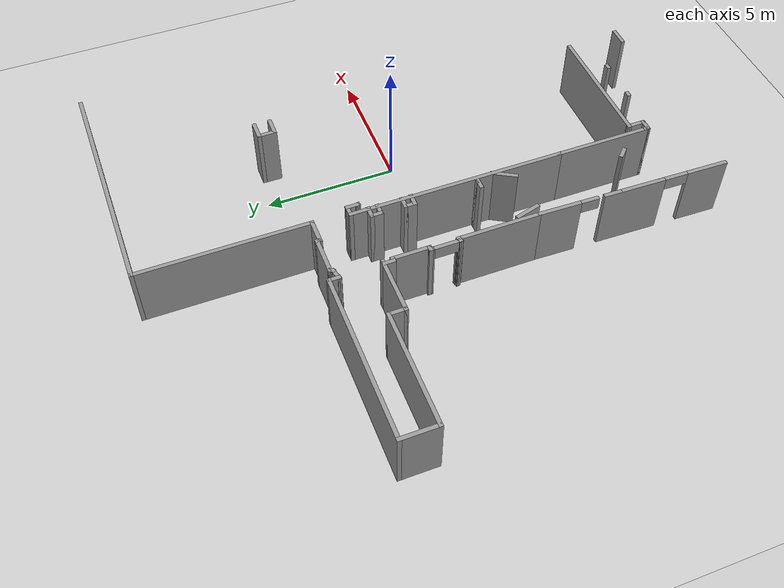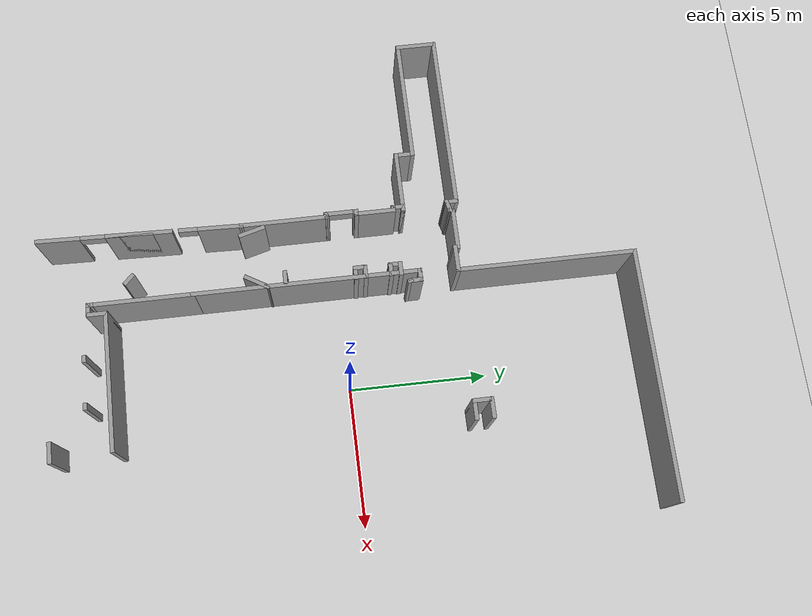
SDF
<sdf version="1.4">
 <world name="default">
  <include><uri>model://ground_plane</uri></include>
  <include><uri>model://sun</uri></include>
  <model name="3rdFloor">
   <static>true</static>
   <link name="Wall_101">
    <collision name="Wall_101_Collision">
     <geometry><box><size>0.25 0.15 2.5</size></box></geometry>
     <pose>0 0 1.25 0 -0 0</pose>
    </collision>
    <visual name="Wall_101_Visual">
     <pose>0 0 1.25 0 -0 0</pose>
     <geometry><box><size>0.25 0.15 2.5</size></box></geometry>
     <material>
      <script><uri>file://media/materials/scripts/gazebo.material</uri><name>Gazebo/Grey</name></script>
      <ambient>1 1 1 1</ambient>
     </material>
    </visual>
    <pose>-3.72513 -1.89943 0 0 -0 0</pose>
   </link>
   <link name="Wall_102">
    <collision name="Wall_102_Collision">
     <geometry><box><size>0.25 0.15 2.5</size></box></geometry>
     <pose>0 0 1.25 0 -0 0</pose>
    </collision>
    <visual name="Wall_102_Visual">
     <pose>0 0 1.25 0 -0 0</pose>
     <geometry><box><size>0.25 0.15 2.5</size></box></geometry>
     <material>
      <script><uri>file://media/materials/scripts/gazebo.material</uri><name>Gazebo/Grey</name></script>
      <ambient>1 1 1 1</ambient>
     </material>
    </visual>
    <pose>-3.72513 -1.89943 0 0 -0 3.14159</pose>
   </link>
   <link name="Wall_104">
    <collision name="Wall_104_Collision">
     <geometry><box><size>0.5 0.15 2.5</size></box></geometry>
     <pose>0 0 1.25 0 -0 0</pose>
    </collision>
    <visual name="Wall_104_Visual">
     <pose>0 0 1.25 0 -0 0</pose>
     <geometry><box><size>0.5 0.15 2.5</size></box></geometry>
     <material>
      <script><uri>file://media/materials/scripts/gazebo.material</uri><name>Gazebo/Grey</name></script>
      <ambient>1 1 1 1</ambient>
     </material>
    </visual>
    <pose>-3.85013 -1.89943 0 0 -0 3.14159</pose>
   </link>
   <link name="Wall_106">
    <collision name="Wall_106_Collision">
     <geometry><box><size>0.5 0.15 2.5</size></box></geometry>
     <pose>0 0 1.25 0 -0 0</pose>
    </collision>
    <visual name="Wall_106_Visual">
     <pose>0 0 1.25 0 -0 0</pose>
     <geometry><box><size>0.5 0.15 2.5</size></box></geometry>
     <material>
      <script><uri>file://media/materials/scripts/gazebo.material</uri><name>Gazebo/Grey</name></script>
      <ambient>1 1 1 1</ambient>
     </material>
    </visual>
    <pose>-3.73223 2.2205 0 0 -0 3.14159</pose>
   </link>
   <link name="Wall_107">
    <collision name="Wall_107_Collision">
     <geometry><box><size>0.5 0.15 2.5</size></box></geometry>
     <pose>0 0 1.25 0 -0 0</pose>
    </collision>
    <visual name="Wall_107_Visual">
     <pose>0 0 1.25 0 -0 0</pose>
     <geometry><box><size>0.5 0.15 2.5</size></box></geometry>
     <material>
      <script><uri>file://media/materials/scripts/gazebo.material</uri><name>Gazebo/Grey</name></script>
      <ambient>1 1 1 1</ambient>
     </material>
    </visual>
    <pose>-3.90723 2.0455 0 0 0 -1.5708</pose>
   </link>
   <link name="Wall_108">
    <collision name="Wall_108_Collision">
     <geometry><box><size>0.5 0.15 2.5</size></box></geometry>
     <pose>0 0 1.25 0 -0 0</pose>
    </collision>
    <visual name="Wall_108_Visual">
     <pose>0 0 1.25 0 -0 0</pose>
     <geometry><box><size>0.5 0.15 2.5</size></box></geometry>
     <material>
      <script><uri>file://media/materials/scripts/gazebo.material</uri><name>Gazebo/Grey</name></script>
      <ambient>1 1 1 1</ambient>
     </material>
    </visual>
    <pose>-3.73223 1.8705 0 0 -0 0</pose>
   </link>
   <link name="Wall_110">
    <collision name="Wall_110_Collision">
     <geometry><box><size>0.5 0.15 2.5</size></box></geometry>
     <pose>0 0 1.25 0 -0 0</pose>
    </collision>
    <visual name="Wall_110_Visual">
     <pose>0 0 1.25 0 -0 0</pose>
     <geometry><box><size>0.5 0.15 2.5</size></box></geometry>
     <material>
      <script><uri>file://media/materials/scripts/gazebo.material</uri><name>Gazebo/Grey</name></script>
      <ambient>1 1 1 1</ambient>
     </material>
    </visual>
    <pose>-3.74744 0.958175 0 0 -0 3.14159</pose>
   </link>
   <link name="Wall_111">
    <collision name="Wall_111_Collision">
     <geometry><box><size>0.5 0.15 2.5</size></box></geometry>
     <pose>0 0 1.25 0 -0 0</pose>
    </collision>
    <visual name="Wall_111_Visual">
     <pose>0 0 1.25 0 -0 0</pose>
     <geometry><box><size>0.5 0.15 2.5</size></box></geometry>
     <material>
      <script><uri>file://media/materials/scripts/gazebo.material</uri><name>Gazebo/Grey</name></script>
      <ambient>1 1 1 1</ambient>
     </material>
    </visual>
    <pose>-3.92244 0.783175 0 0 0 -1.5708</pose>
   </link>
   <link name="Wall_112">
    <collision name="Wall_112_Collision">
     <geometry><box><size>0.515209 0.15 2.5</size></box></geometry>
     <pose>0 0 1.25 0 -0 0</pose>
    </collision>
    <visual name="Wall_112_Visual">
     <pose>0 0 1.25 0 -0 0</pose>
     <geometry><box><size>0.515209 0.15 2.5</size></box></geometry>
     <material>
      <script><uri>file://media/materials/scripts/gazebo.material</uri><name>Gazebo/Grey</name></script>
      <ambient>1 1 1 1</ambient>
     </material>
    </visual>
    <pose>-3.73983 0.608175 0 0 -0 0</pose>
   </link>
   <link name="Wall_114">
    <collision name="Wall_114_Collision">
     <geometry><box><size>0.25 0.15 2.5</size></box></geometry>
     <pose>0 0 1.25 0 -0 0</pose>
    </collision>
    <visual name="Wall_114_Visual">
     <pose>0 0 1.25 0 -0 0</pose>
     <geometry><box><size>0.25 0.15 2.5</size></box></geometry>
     <material>
      <script><uri>file://media/materials/scripts/gazebo.material</uri><name>Gazebo/Grey</name></script>
      <ambient>1 1 1 1</ambient>
     </material>
    </visual>
    <pose>-1.66801 -9.13362 0 0 -0 0</pose>
   </link>
   <link name="Wall_116">
    <collision name="Wall_116_Collision">
     <geometry><box><size>0.25 0.15 2.5</size></box></geometry>
     <pose>0 0 1.25 0 -0 0</pose>
    </collision>
    <visual name="Wall_116_Visual">
     <pose>0 0 1.25 0 -0 0</pose>
     <geometry><box><size>0.25 0.15 2.5</size></box></geometry>
     <material>
      <script><uri>file://media/materials/scripts/gazebo.material</uri><name>Gazebo/Grey</name></script>
      <ambient>1 1 1 1</ambient>
     </material>
    </visual>
    <pose>0.011032 -9.1686 0 0 -0 0</pose>
   </link>
   <link name="Wall_120">
    <collision name="Wall_120_Collision">
     <geometry><box><size>0.5 0.15 2.5</size></box></geometry>
     <pose>0 0 1.25 0 -0 0</pose>
    </collision>
    <visual name="Wall_120_Visual">
     <pose>0 0 1.25 0 -0 0</pose>
     <geometry><box><size>0.5 0.15 2.5</size></box></geometry>
     <material>
      <script><uri>file://media/materials/scripts/gazebo.material</uri><name>Gazebo/Grey</name></script>
      <ambient>1 1 1 1</ambient>
     </material>
    </visual>
    <pose>-4.37519 -7.42091 0 0 0 -0.785398</pose>
   </link>
   <link name="Wall_122">
    <collision name="Wall_122_Collision">
     <geometry><box><size>1 0.15 2.5</size></box></geometry>
     <pose>0 0 1.25 0 -0 0</pose>
    </collision>
    <visual name="Wall_122_Visual">
     <pose>0 0 1.25 0 -0 0</pose>
     <geometry><box><size>1 0.15 2.5</size></box></geometry>
     <material>
      <script><uri>file://media/materials/scripts/gazebo.material</uri><name>Gazebo/Grey</name></script>
      <ambient>1 1 1 1</ambient>
     </material>
    </visual>
    <pose>-5.6895 -2.93592 0 0 0 -1.309</pose>
   </link>
   <link name="Wall_124">
    <collision name="Wall_124_Collision">
     <geometry><box><size>1 0.15 2.5</size></box></geometry>
     <pose>0 0 1.25 0 -0 0</pose>
    </collision>
    <visual name="Wall_124_Visual">
     <pose>0 0 1.25 0 -0 0</pose>
     <geometry><box><size>1 0.15 2.5</size></box></geometry>
     <material>
      <script><uri>file://media/materials/scripts/gazebo.material</uri><name>Gazebo/Grey</name></script>
      <ambient>1 1 1 1</ambient>
     </material>
    </visual>
    <pose>-3.79076 -2.91095 0 0 0 -2.0944</pose>
   </link>
   <link name="Wall_126">
    <collision name="Wall_126_Collision">
     <geometry><box><size>0.75 0.15 2.5</size></box></geometry>
     <pose>0 0 1.25 0 -0 0</pose>
    </collision>
    <visual name="Wall_126_Visual">
     <pose>0 0 1.25 0 -0 0</pose>
     <geometry><box><size>0.75 0.15 2.5</size></box></geometry>
     <material>
      <script><uri>file://media/materials/scripts/gazebo.material</uri><name>Gazebo/Grey</name></script>
      <ambient>1 1 1 1</ambient>
     </material>
    </visual>
    <pose>1.46976 -10.4503 0 0 -0 0</pose>
   </link>
   <link name="Wall_44">
    <collision name="Wall_44_Collision">
     <geometry><box><size>9 0.15 2.5</size></box></geometry>
     <pose>0 0 1.25 0 -0 0</pose>
    </collision>
    <visual name="Wall_44_Visual">
     <pose>0 0 1.25 0 -0 0</pose>
     <geometry><box><size>9 0.15 2.5</size></box></geometry>
     <material>
      <script><uri>file://media/materials/scripts/gazebo.material</uri><name>Gazebo/Grey</name></script>
      <ambient>1 1 1 1</ambient>
     </material>
    </visual>
    <pose>0.964744 10.6072 0 0 -0 3.14159</pose>
   </link>
   <link name="Wall_45">
    <collision name="Wall_45_Collision">
     <geometry><box><size>6.5 0.15 2.5</size></box></geometry>
     <pose>0 0 1.25 0 -0 0</pose>
    </collision>
    <visual name="Wall_45_Visual">
     <pose>0 0 1.25 0 -0 0</pose>
     <geometry><box><size>6.5 0.15 2.5</size></box></geometry>
     <material>
      <script><uri>file://media/materials/scripts/gazebo.material</uri><name>Gazebo/Grey</name></script>
      <ambient>1 1 1 1</ambient>
     </material>
    </visual>
    <pose>-3.46026 7.43223 0 0 0 -1.5708</pose>
   </link>
   <link name="Wall_46">
    <collision name="Wall_46_Collision">
     <geometry><box><size>1 0.15 2.5</size></box></geometry>
     <pose>0 0 1.25 0 -0 0</pose>
    </collision>
    <visual name="Wall_46_Visual">
     <pose>0 0 1.25 0 -0 0</pose>
     <geometry><box><size>1 0.15 2.5</size></box></geometry>
     <material>
      <script><uri>file://media/materials/scripts/gazebo.material</uri><name>Gazebo/Grey</name></script>
      <ambient>1 1 1 1</ambient>
     </material>
    </visual>
    <pose>-3.88525 4.25723 0 0 -0 3.14159</pose>
   </link>
   <link name="Wall_47">
    <collision name="Wall_47_Collision">
     <geometry><box><size>0.25 0.15 2.5</size></box></geometry>
     <pose>0 0 1.25 0 -0 0</pose>
    </collision>
    <visual name="Wall_47_Visual">
     <pose>0 0 1.25 0 -0 0</pose>
     <geometry><box><size>0.25 0.15 2.5</size></box></geometry>
     <material>
      <script><uri>file://media/materials/scripts/gazebo.material</uri><name>Gazebo/Grey</name></script>
      <ambient>1 1 1 1</ambient>
     </material>
    </visual>
    <pose>-4.31026 4.30723 0 0 -0 1.5708</pose>
   </link>
   <link name="Wall_48">
    <collision name="Wall_48_Collision">
     <geometry><box><size>1.5 0.15 2.5</size></box></geometry>
     <pose>0 0 1.25 0 -0 0</pose>
    </collision>
    <visual name="Wall_48_Visual">
     <pose>0 0 1.25 0 -0 0</pose>
     <geometry><box><size>1.5 0.15 2.5</size></box></geometry>
     <material>
      <script><uri>file://media/materials/scripts/gazebo.material</uri><name>Gazebo/Grey</name></script>
      <ambient>1 1 1 1</ambient>
     </material>
    </visual>
    <pose>-4.98526 4.35723 0 0 -0 3.14159</pose>
   </link>
   <link name="Wall_49">
    <collision name="Wall_49_Collision">
     <geometry><box><size>0.25 0.15 2.5</size></box></geometry>
     <pose>0 0 1.25 0 -0 0</pose>
    </collision>
    <visual name="Wall_49_Visual">
     <pose>0 0 1.25 0 -0 0</pose>
     <geometry><box><size>0.25 0.15 2.5</size></box></geometry>
     <material>
      <script><uri>file://media/materials/scripts/gazebo.material</uri><name>Gazebo/Grey</name></script>
      <ambient>1 1 1 1</ambient>
     </material>
    </visual>
    <pose>-5.68526 4.31393 0 0 0 -2.0944</pose>
   </link>
   <link name="Wall_50">
    <collision name="Wall_50_Collision">
     <geometry><box><size>0.5 0.15 2.5</size></box></geometry>
     <pose>0 0 1.25 0 -0 0</pose>
    </collision>
    <visual name="Wall_50_Visual">
     <pose>0 0 1.25 0 -0 0</pose>
     <geometry><box><size>0.5 0.15 2.5</size></box></geometry>
     <material>
      <script><uri>file://media/materials/scripts/gazebo.material</uri><name>Gazebo/Grey</name></script>
      <ambient>1 1 1 1</ambient>
     </material>
    </visual>
    <pose>-5.87929 4.22533 0 0 0 -2.87979</pose>
   </link>
   <link name="Wall_51">
    <collision name="Wall_51_Collision">
     <geometry><box><size>0.5 0.15 2.5</size></box></geometry>
     <pose>0 0 1.25 0 -0 0</pose>
    </collision>
    <visual name="Wall_51_Visual">
     <pose>0 0 1.25 0 -0 0</pose>
     <geometry><box><size>0.5 0.15 2.5</size></box></geometry>
     <material>
      <script><uri>file://media/materials/scripts/gazebo.material</uri><name>Gazebo/Grey</name></script>
      <ambient>1 1 1 1</ambient>
     </material>
    </visual>
    <pose>-6.04833 4.35504 0 0 -0 1.5708</pose>
   </link>
   <link name="Wall_53">
    <collision name="Wall_53_Collision">
     <geometry><box><size>6.5 0.15 2.5</size></box></geometry>
     <pose>0 0 1.25 0 -0 0</pose>
    </collision>
    <visual name="Wall_53_Visual">
     <pose>0 0 1.25 0 -0 0</pose>
     <geometry><box><size>6.5 0.15 2.5</size></box></geometry>
     <material>
      <script><uri>file://media/materials/scripts/gazebo.material</uri><name>Gazebo/Grey</name></script>
      <ambient>1 1 1 1</ambient>
     </material>
    </visual>
    <pose>-9.22333 4.53004 0 0 -0 3.14159</pose>
   </link>
   <link name="Wall_54">
    <collision name="Wall_54_Collision">
     <geometry><box><size>1.5 0.15 2.5</size></box></geometry>
     <pose>0 0 1.25 0 -0 0</pose>
    </collision>
    <visual name="Wall_54_Visual">
     <pose>0 0 1.25 0 -0 0</pose>
     <geometry><box><size>1.5 0.15 2.5</size></box></geometry>
     <material>
      <script><uri>file://media/materials/scripts/gazebo.material</uri><name>Gazebo/Grey</name></script>
      <ambient>1 1 1 1</ambient>
     </material>
    </visual>
    <pose>-12.3983 3.85504 0 0 0 -1.5708</pose>
   </link>
   <link name="Wall_55">
    <collision name="Wall_55_Collision">
     <geometry><box><size>4.5 0.15 2.5</size></box></geometry>
     <pose>0 0 1.25 0 -0 0</pose>
    </collision>
    <visual name="Wall_55_Visual">
     <pose>0 0 1.25 0 -0 0</pose>
     <geometry><box><size>4.5 0.15 2.5</size></box></geometry>
     <material>
      <script><uri>file://media/materials/scripts/gazebo.material</uri><name>Gazebo/Grey</name></script>
      <ambient>1 1 1 1</ambient>
     </material>
    </visual>
    <pose>-10.2233 3.18004 0 0 -0 0</pose>
   </link>
   <link name="Wall_56">
    <collision name="Wall_56_Collision">
     <geometry><box><size>0.75 0.15 2.5</size></box></geometry>
     <pose>0 0 1.25 0 -0 0</pose>
    </collision>
    <visual name="Wall_56_Visual">
     <pose>0 0 1.25 0 -0 0</pose>
     <geometry><box><size>0.75 0.15 2.5</size></box></geometry>
     <material>
      <script><uri>file://media/materials/scripts/gazebo.material</uri><name>Gazebo/Grey</name></script>
      <ambient>1 1 1 1</ambient>
     </material>
    </visual>
    <pose>-8.04833 2.88004 0 0 0 -1.5708</pose>
   </link>
   <link name="Wall_57">
    <collision name="Wall_57_Collision">
     <geometry><box><size>2.25 0.15 2.5</size></box></geometry>
     <pose>0 0 1.25 0 -0 0</pose>
    </collision>
    <visual name="Wall_57_Visual">
     <pose>0 0 1.25 0 -0 0</pose>
     <geometry><box><size>2.25 0.15 2.5</size></box></geometry>
     <material>
      <script><uri>file://media/materials/scripts/gazebo.material</uri><name>Gazebo/Grey</name></script>
      <ambient>1 1 1 1</ambient>
     </material>
    </visual>
    <pose>-6.99833 2.58004 0 0 -0 0</pose>
   </link>
   <link name="Wall_58">
    <collision name="Wall_58_Collision">
     <geometry><box><size>0.25 0.15 2.5</size></box></geometry>
     <pose>0 0 1.25 0 -0 0</pose>
    </collision>
    <visual name="Wall_58_Visual">
     <pose>0 0 1.25 0 -0 0</pose>
     <geometry><box><size>0.25 0.15 2.5</size></box></geometry>
     <material>
      <script><uri>file://media/materials/scripts/gazebo.material</uri><name>Gazebo/Grey</name></script>
      <ambient>1 1 1 1</ambient>
     </material>
    </visual>
    <pose>-5.99833 2.58004 0 0 -0 3.14159</pose>
   </link>
   <link name="Wall_59">
    <collision name="Wall_59_Collision">
     <geometry><box><size>0.5 0.15 2.5</size></box></geometry>
     <pose>0 0 1.25 0 -0 0</pose>
    </collision>
    <visual name="Wall_59_Visual">
     <pose>0 0 1.25 0 -0 0</pose>
     <geometry><box><size>0.5 0.15 2.5</size></box></geometry>
     <material>
      <script><uri>file://media/materials/scripts/gazebo.material</uri><name>Gazebo/Grey</name></script>
      <ambient>1 1 1 1</ambient>
     </material>
    </visual>
    <pose>-6.04833 2.40504 0 0 0 -1.5708</pose>
   </link>
   <link name="Wall_60">
    <collision name="Wall_60_Collision">
     <geometry><box><size>0.25 0.15 2.5</size></box></geometry>
     <pose>0 0 1.25 0 -0 0</pose>
    </collision>
    <visual name="Wall_60_Visual">
     <pose>0 0 1.25 0 -0 0</pose>
     <geometry><box><size>0.25 0.15 2.5</size></box></geometry>
     <material>
      <script><uri>file://media/materials/scripts/gazebo.material</uri><name>Gazebo/Grey</name></script>
      <ambient>1 1 1 1</ambient>
     </material>
    </visual>
    <pose>-5.99833 2.23004 0 0 -0 0</pose>
   </link>
   <link name="Wall_61">
    <collision name="Wall_61_Collision">
     <geometry><box><size>1.5 0.15 2.5</size></box></geometry>
     <pose>0 0 1.25 0 -0 0</pose>
    </collision>
    <visual name="Wall_61_Visual">
     <pose>0 0 1.25 0 -0 0</pose>
     <geometry><box><size>1.5 0.15 2.5</size></box></geometry>
     <material>
      <script><uri>file://media/materials/scripts/gazebo.material</uri><name>Gazebo/Grey</name></script>
      <ambient>1 1 1 1</ambient>
     </material>
    </visual>
    <pose>-5.94833 1.55504 0 0 0 -1.5708</pose>
   </link>
   <link name="Wall_62">
    <collision name="Wall_62_Collision">
     <geometry><box><size>0.25 0.15 2.5</size></box></geometry>
     <pose>0 0 1.25 0 -0 0</pose>
    </collision>
    <visual name="Wall_62_Visual">
     <pose>0 0 1.25 0 -0 0</pose>
     <geometry><box><size>0.25 0.15 2.5</size></box></geometry>
     <material>
      <script><uri>file://media/materials/scripts/gazebo.material</uri><name>Gazebo/Grey</name></script>
      <ambient>1 1 1 1</ambient>
     </material>
    </visual>
    <pose>-5.99833 0.880041 0 0 -0 3.14159</pose>
   </link>
   <link name="Wall_63">
    <pose>-6.04833 0.330041 0 0 0 -1.5708</pose>
    <visual name="Wall_63_Visual_0">
     <pose>-0.525534 0 1.25 0 -0 0</pose>
     <geometry><box><size>0.198932 0.15 2.5</size></box></geometry>
     <material>
      <script><uri>file://media/materials/scripts/gazebo.material</uri><name>Gazebo/Grey</name></script>
      <ambient>1 1 1 1</ambient>
     </material>
    </visual>
    <collision name="Wall_63_Collision_0">
     <geometry><box><size>0.198932 0.15 2.5</size></box></geometry>
     <pose>-0.525534 0 1.25 0 -0 0</pose>
    </collision>
    <visual name="Wall_63_Visual_1">
     <pose>0.549466 0 1.25 0 -0 0</pose>
     <geometry><box><size>0.151068 0.15 2.5</size></box></geometry>
     <material>
      <script><uri>file://media/materials/scripts/gazebo.material</uri><name>Gazebo/Grey</name></script>
      <ambient>1 1 1 1</ambient>
     </material>
    </visual>
    <collision name="Wall_63_Collision_1">
     <geometry><box><size>0.151068 0.15 2.5</size></box></geometry>
     <pose>0.549466 0 1.25 0 -0 0</pose>
    </collision>
    <visual name="Wall_63_Visual_2">
     <pose>0.023932 0 2.25 0 -0 0</pose>
     <geometry><box><size>0.9 0.15 0.5</size></box></geometry>
     <material>
      <script><uri>file://media/materials/scripts/gazebo.material</uri><name>Gazebo/Grey</name></script>
      <ambient>1 1 1 1</ambient>
     </material>
    </visual>
    <collision name="Wall_63_Collision_2">
     <geometry><box><size>0.9 0.15 0.5</size></box></geometry>
     <pose>0.023932 0 2.25 0 -0 0</pose>
    </collision>
   </link>
   <link name="Wall_64">
    <collision name="Wall_64_Collision">
     <geometry><box><size>0.15 0.15 2.5</size></box></geometry>
     <pose>0 0 1.25 0 -0 0</pose>
    </collision>
    <visual name="Wall_64_Visual">
     <pose>0 0 1.25 0 -0 0</pose>
     <geometry><box><size>0.15 0.15 2.5</size></box></geometry>
     <material>
      <script><uri>file://media/materials/scripts/gazebo.material</uri><name>Gazebo/Grey</name></script>
      <ambient>1 1 1 1</ambient>
     </material>
    </visual>
    <pose>-6.04833 -0.219959 0 0 -0 0</pose>
   </link>
   <link name="Wall_65">
    <collision name="Wall_65_Collision">
     <geometry><box><size>0.25 0.15 2.5</size></box></geometry>
     <pose>0 0 1.25 0 -0 0</pose>
    </collision>
    <visual name="Wall_65_Visual">
     <pose>0 0 1.25 0 -0 0</pose>
     <geometry><box><size>0.25 0.15 2.5</size></box></geometry>
     <material>
      <script><uri>file://media/materials/scripts/gazebo.material</uri><name>Gazebo/Grey</name></script>
      <ambient>1 1 1 1</ambient>
     </material>
    </visual>
    <pose>-6.00003 -0.207018 0 0 -0 0.261799</pose>
   </link>
   <link name="Wall_66">
    <collision name="Wall_66_Collision">
     <geometry><box><size>3.25 0.15 2.5</size></box></geometry>
     <pose>0 0 1.25 0 -0 0</pose>
    </collision>
    <visual name="Wall_66_Visual">
     <pose>0 0 1.25 0 -0 0</pose>
     <geometry><box><size>3.25 0.15 2.5</size></box></geometry>
     <material>
      <script><uri>file://media/materials/scripts/gazebo.material</uri><name>Gazebo/Grey</name></script>
      <ambient>1 1 1 1</ambient>
     </material>
    </visual>
    <pose>-5.95174 -1.74408 0 0 0 -1.5708</pose>
   </link>
   <link name="Wall_67">
    <pose>-6.04728 -6.96303 0 0 0 -1.59683</pose>
    <visual name="Wall_67_Visual_0">
     <pose>-2.92106 0 1.25 0 -0 0</pose>
     <geometry><box><size>1.64829 0.15 2.5</size></box></geometry>
     <material>
      <script><uri>file://media/materials/scripts/gazebo.material</uri><name>Gazebo/Grey</name></script>
      <ambient>1 1 1 1</ambient>
     </material>
    </visual>
    <collision name="Wall_67_Collision_0">
     <geometry><box><size>1.64829 0.15 2.5</size></box></geometry>
     <pose>-2.92106 0 1.25 0 -0 0</pose>
    </collision>
    <visual name="Wall_67_Visual_1">
     <pose>0.015945 0 1.25 0 -0 0</pose>
     <geometry><box><size>2.42571 0.15 2.5</size></box></geometry>
     <material>
      <script><uri>file://media/materials/scripts/gazebo.material</uri><name>Gazebo/Grey</name></script>
      <ambient>1 1 1 1</ambient>
     </material>
    </visual>
    <collision name="Wall_67_Collision_1">
     <geometry><box><size>2.42571 0.15 2.5</size></box></geometry>
     <pose>0.015945 0 1.25 0 -0 0</pose>
    </collision>
    <visual name="Wall_67_Visual_2">
     <pose>0.363387 0 1.25 0 -0 0</pose>
     <geometry><box><size>1.73083 0.15 2.5</size></box></geometry>
     <material>
      <script><uri>file://media/materials/scripts/gazebo.material</uri><name>Gazebo/Grey</name></script>
      <ambient>1 1 1 1</ambient>
     </material>
    </visual>
    <collision name="Wall_67_Collision_2">
     <geometry><box><size>1.73083 0.15 2.5</size></box></geometry>
     <pose>0.363387 0 1.25 0 -0 0</pose>
    </collision>
    <visual name="Wall_67_Visual_3">
     <pose>2.937 0 1.25 0 -0 0</pose>
     <geometry><box><size>1.6164 0.15 2.5</size></box></geometry>
     <material>
      <script><uri>file://media/materials/scripts/gazebo.material</uri><name>Gazebo/Grey</name></script>
      <ambient>1 1 1 1</ambient>
     </material>
    </visual>
    <collision name="Wall_67_Collision_3">
     <geometry><box><size>1.6164 0.15 2.5</size></box></geometry>
     <pose>2.937 0 1.25 0 -0 0</pose>
    </collision>
    <visual name="Wall_67_Visual_4">
     <pose>-1.74947 0 2.25 0 -0 0</pose>
     <geometry><box><size>0.694884 0.15 0.5</size></box></geometry>
     <material>
      <script><uri>file://media/materials/scripts/gazebo.material</uri><name>Gazebo/Grey</name></script>
      <ambient>1 1 1 1</ambient>
     </material>
    </visual>
    <collision name="Wall_67_Collision_4">
     <geometry><box><size>0.694884 0.15 0.5</size></box></geometry>
     <pose>-1.74947 0 2.25 0 -0 0</pose>
    </collision>
    <visual name="Wall_67_Visual_5">
     <pose>1.6788 0 2.25 0 -0 0</pose>
     <geometry><box><size>0.9 0.15 0.5</size></box></geometry>
     <material>
      <script><uri>file://media/materials/scripts/gazebo.material</uri><name>Gazebo/Grey</name></script>
      <ambient>1 1 1 1</ambient>
     </material>
    </visual>
    <collision name="Wall_67_Collision_5">
     <geometry><box><size>0.9 0.15 0.5</size></box></geometry>
     <pose>1.6788 0 2.25 0 -0 0</pose>
    </collision>
    <visual name="Wall_67_Visual_6">
     <pose>1.6788 0 2.25 0 -0 0</pose>
     <geometry><box><size>0.9 0.15 0.5</size></box></geometry>
     <material>
      <script><uri>file://media/materials/scripts/gazebo.material</uri><name>Gazebo/Grey</name></script>
      <ambient>1 1 1 1</ambient>
     </material>
    </visual>
    <collision name="Wall_67_Collision_6">
     <geometry><box><size>0.9 0.15 0.5</size></box></geometry>
     <pose>1.6788 0 2.25 0 -0 0</pose>
    </collision>
   </link>
   <link name="Wall_69">
    <collision name="Wall_69_Collision">
     <geometry><box><size>8.25 0.15 2.5</size></box></geometry>
     <pose>0 0 1.25 0 -0 0</pose>
    </collision>
    <visual name="Wall_69_Visual">
     <pose>0 0 1.25 0 -0 0</pose>
     <geometry><box><size>8.25 0.15 2.5</size></box></geometry>
     <material>
      <script><uri>file://media/materials/scripts/gazebo.material</uri><name>Gazebo/Grey</name></script>
      <ambient>1 1 1 1</ambient>
     </material>
    </visual>
    <pose>-3.58377 -1.16463 0 0 0 -1.5708</pose>
   </link>
   <link name="Wall_70">
    <collision name="Wall_70_Collision">
     <geometry><box><size>3.75 0.15 2.5</size></box></geometry>
     <pose>0 0 1.25 0 -0 0</pose>
    </collision>
    <visual name="Wall_70_Visual">
     <pose>0 0 1.25 0 -0 0</pose>
     <geometry><box><size>3.75 0.15 2.5</size></box></geometry>
     <material>
      <script><uri>file://media/materials/scripts/gazebo.material</uri><name>Gazebo/Grey</name></script>
      <ambient>1 1 1 1</ambient>
     </material>
    </visual>
    <pose>-3.58377 -7.01463 0 0 0 -1.5708</pose>
   </link>
   <link name="Wall_71">
    <collision name="Wall_71_Collision">
     <geometry><box><size>0.25 0.15 2.5</size></box></geometry>
     <pose>0 0 1.25 0 -0 0</pose>
    </collision>
    <visual name="Wall_71_Visual">
     <pose>0 0 1.25 0 -0 0</pose>
     <geometry><box><size>0.25 0.15 2.5</size></box></geometry>
     <material>
      <script><uri>file://media/materials/scripts/gazebo.material</uri><name>Gazebo/Grey</name></script>
      <ambient>1 1 1 1</ambient>
     </material>
    </visual>
    <pose>-3.58377 -8.86463 0 0 0 -1.5708</pose>
   </link>
   <link name="Wall_72">
    <collision name="Wall_72_Collision">
     <geometry><box><size>0.5 0.15 2.5</size></box></geometry>
     <pose>0 0 1.25 0 -0 0</pose>
    </collision>
    <visual name="Wall_72_Visual">
     <pose>0 0 1.25 0 -0 0</pose>
     <geometry><box><size>0.5 0.15 2.5</size></box></geometry>
     <material>
      <script><uri>file://media/materials/scripts/gazebo.material</uri><name>Gazebo/Grey</name></script>
      <ambient>1 1 1 1</ambient>
     </material>
    </visual>
    <pose>-3.40877 -8.91463 0 0 -0 0</pose>
   </link>
   <link name="Wall_73">
    <collision name="Wall_73_Collision">
     <geometry><box><size>0.75 0.15 2.5</size></box></geometry>
     <pose>0 0 1.25 0 -0 0</pose>
    </collision>
    <visual name="Wall_73_Visual">
     <pose>0 0 1.25 0 -0 0</pose>
     <geometry><box><size>0.75 0.15 2.5</size></box></geometry>
     <material>
      <script><uri>file://media/materials/scripts/gazebo.material</uri><name>Gazebo/Grey</name></script>
      <ambient>1 1 1 1</ambient>
     </material>
    </visual>
    <pose>-3.23377 -8.61463 0 0 -0 1.5708</pose>
   </link>
   <link name="Wall_74">
    <collision name="Wall_74_Collision">
     <geometry><box><size>5 0.15 2.5</size></box></geometry>
     <pose>0 0 1.25 0 -0 0</pose>
    </collision>
    <visual name="Wall_74_Visual">
     <pose>0 0 1.25 0 -0 0</pose>
     <geometry><box><size>5 0.15 2.5</size></box></geometry>
     <material>
      <script><uri>file://media/materials/scripts/gazebo.material</uri><name>Gazebo/Grey</name></script>
      <ambient>1 1 1 1</ambient>
     </material>
    </visual>
    <pose>-0.80877 -8.31463 0 0 -0 0</pose>
   </link>
   <link name="Wall_86">
    <collision name="Wall_86_Collision">
     <geometry><box><size>0.20099 0.15 2.5</size></box></geometry>
     <pose>0 0 1.25 0 -0 0</pose>
    </collision>
    <visual name="Wall_86_Visual">
     <pose>0 0 1.25 0 -0 0</pose>
     <geometry><box><size>0.20099 0.15 2.5</size></box></geometry>
     <material>
      <script><uri>file://media/materials/scripts/gazebo.material</uri><name>Gazebo/Grey</name></script>
      <ambient>1 1 1 1</ambient>
     </material>
    </visual>
    <pose>-3.23877 2.51037 0 0 0 -1.3734</pose>
   </link>
   <link name="Wall_88">
    <collision name="Wall_88_Collision">
     <geometry><box><size>0.48 0.15 2.5</size></box></geometry>
     <pose>0 0 1.25 0 -0 0</pose>
    </collision>
    <visual name="Wall_88_Visual">
     <pose>0 0 1.25 0 -0 0</pose>
     <geometry><box><size>0.48 0.15 2.5</size></box></geometry>
     <material>
      <script><uri>file://media/materials/scripts/gazebo.material</uri><name>Gazebo/Grey</name></script>
      <ambient>1 1 1 1</ambient>
     </material>
    </visual>
    <pose>-3.41877 2.88537 0 0 -0 0</pose>
   </link>
   <link name="Wall_89">
    <collision name="Wall_89_Collision">
     <geometry><box><size>0.5 0.15 2.5</size></box></geometry>
     <pose>0 0 1.25 0 -0 0</pose>
    </collision>
    <visual name="Wall_89_Visual">
     <pose>0 0 1.25 0 -0 0</pose>
     <geometry><box><size>0.5 0.15 2.5</size></box></geometry>
     <material>
      <script><uri>file://media/materials/scripts/gazebo.material</uri><name>Gazebo/Grey</name></script>
      <ambient>1 1 1 1</ambient>
     </material>
    </visual>
    <pose>-3.24377 2.71037 0 0 0 -1.5708</pose>
   </link>
   <link name="Wall_96">
    <collision name="Wall_96_Collision">
     <geometry><box><size>0.75 0.15 2.5</size></box></geometry>
     <pose>0 0 1.25 0 -0 0</pose>
    </collision>
    <visual name="Wall_96_Visual">
     <pose>0 0 1.25 0 -0 0</pose>
     <geometry><box><size>0.75 0.15 2.5</size></box></geometry>
     <material>
      <script><uri>file://media/materials/scripts/gazebo.material</uri><name>Gazebo/Grey</name></script>
      <ambient>1 1 1 1</ambient>
     </material>
    </visual>
    <pose>1.57398 4.16021 0 0 -0 0</pose>
   </link>
   <link name="Wall_98">
    <collision name="Wall_98_Collision">
     <geometry><box><size>0.75 0.15 2.5</size></box></geometry>
     <pose>0 0 1.25 0 -0 0</pose>
    </collision>
    <visual name="Wall_98_Visual">
     <pose>0 0 1.25 0 -0 0</pose>
     <geometry><box><size>0.75 0.15 2.5</size></box></geometry>
     <material>
      <script><uri>file://media/materials/scripts/gazebo.material</uri><name>Gazebo/Grey</name></script>
      <ambient>1 1 1 1</ambient>
     </material>
    </visual>
    <pose>1.57398 4.76021 0 0 -0 3.14159</pose>
   </link>
   <link name="Wall_99">
    <collision name="Wall_99_Collision">
     <geometry><box><size>0.75 0.15 2.5</size></box></geometry>
     <pose>0 0 1.25 0 -0 0</pose>
    </collision>
    <visual name="Wall_99_Visual">
     <pose>0 0 1.25 0 -0 0</pose>
     <geometry><box><size>0.75 0.15 2.5</size></box></geometry>
     <material>
      <script><uri>file://media/materials/scripts/gazebo.material</uri><name>Gazebo/Grey</name></script>
      <ambient>1 1 1 1</ambient>
     </material>
    </visual>
    <pose>1.27398 4.46021 0 0 0 -1.5708</pose>
   </link>
  </model>
 </world>
</sdf>
